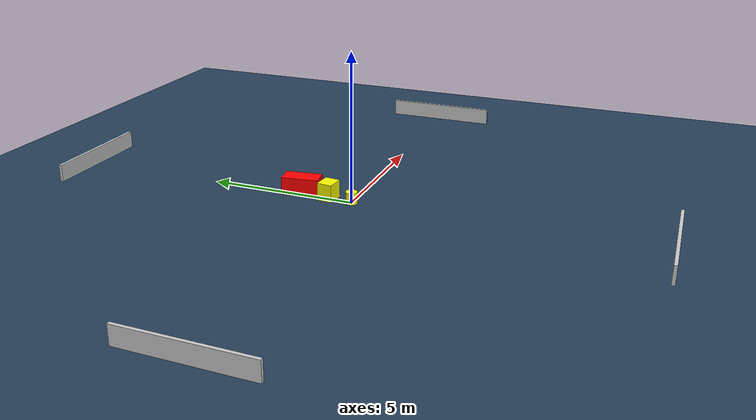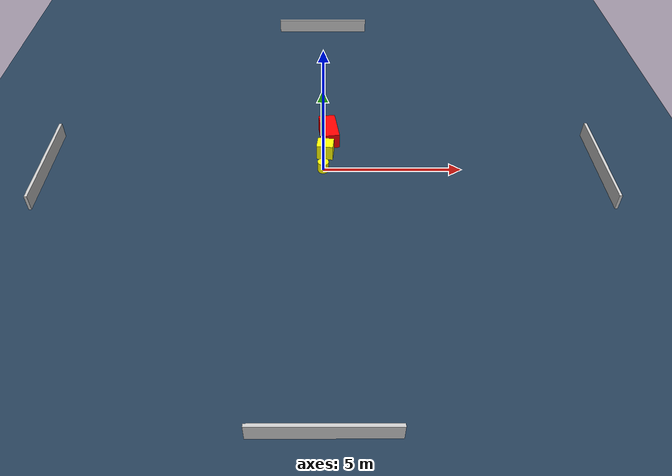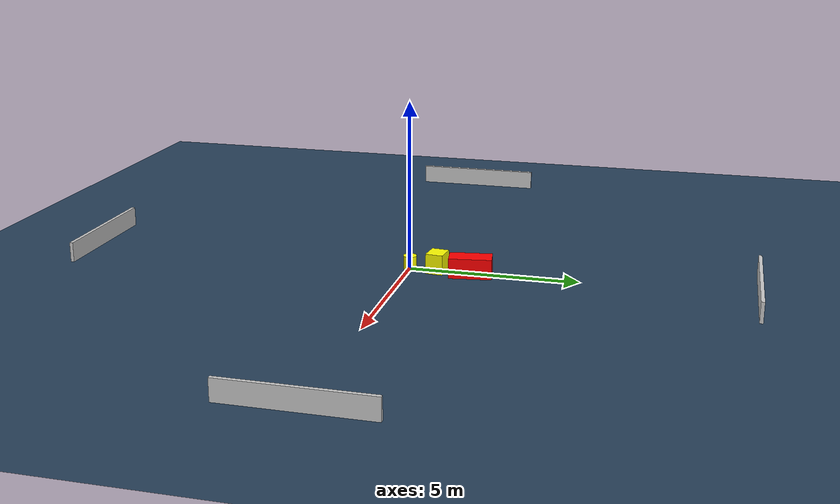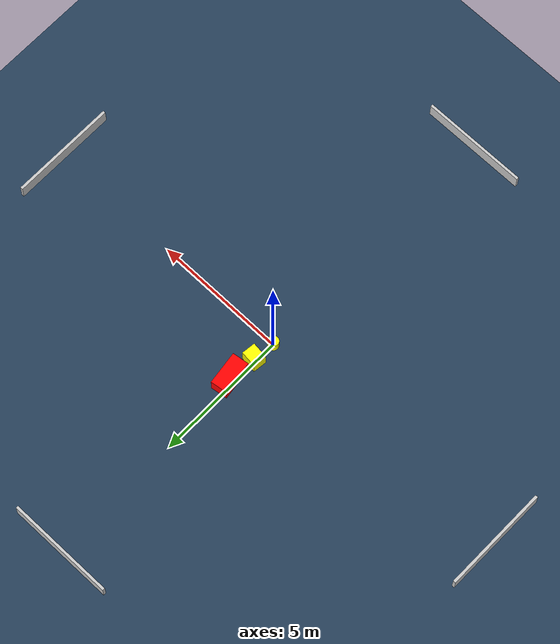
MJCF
<?xml version="1.0" ?>
<mujoco model="generated_environment">
  <option timestep="0.01" integrator="RK4" cone="elliptic"/>
  <default>
    <geom density="1"/>
  </default>
  <asset>
    <texture builtin="gradient" height="3072" name="skybox" rgb1="0.3 0.5 0.7" rgb2="0 0 0" type="skybox" width="512"/>
    <texture builtin="checker" height="300" name="groundplane" rgb1="0.2 0.3 0.4" rgb2="0.1 0.2 0.3" type="2d" width="300"/>
    <material name="groundplane" reflectance="0.2" texrepeat="5 5" texture="groundplane"/>
  </asset>
  <worldbody>
    <light dir="0 0 -1" directional="true" pos="0 0 1.5"/>
    <geom condim="3" friction="0.5 0.005 0.001" material="groundplane" name="floor" pos="0 0 0" size="0 0 0.05" type="plane"/>
    <body name="walls">
      <geom name="wall_1" condim="4" pos="-10.0 0.0 0.3" rgba="0.800000011920929 0.800000011920929 0.800000011920929 1.0" size="0.05 2.0 0.3" type="box"/>
      <geom name="wall_2" condim="4" pos="10.0 0.0 0.3" rgba="0.800000011920929 0.800000011920929 0.800000011920929 1.0" size="0.05 2.0 0.3" type="box"/>
      <geom name="wall_3" condim="4" pos="0.0 -10.0 0.3" rgba="0.800000011920929 0.800000011920929 0.800000011920929 1.0" size="2.0 0.05 0.3" type="box"/>
      <geom name="wall_4" condim="4" pos="0.0 10.0 0.3" rgba="0.800000011920929 0.800000011920929 0.800000011920929 1.0" size="2.0 0.05 0.3" type="box"/>
    </body>
    <body name="robot">
      <joint name="joint_x" type="slide" pos="0 0 0" axis="1 0 0"/>
      <joint name="joint_y" type="slide" pos="0 0 0" axis="0 1 0"/>
      <geom name="robot" type="cylinder" pos="0.0 0.0 0.2" size="0.2 0.2 0.0" mass="5.0" friction="1.0 0.005 0.0001" condim="4" rgba="1.0 1.0 0.0 1.0"/>
    </body>
    <body name="obstacle_1_movable">
      <geom name="obstacle_1_movable" condim="4" pos="0.07888390023442479 0.8473726500479105 0.3" euler="0 0 263.4880821058736" friction="0.0 0.005 0.001" rgba="1.0 1.0 0.0 1.0" size="0.2574765794763677 0.3003486977933321 0.3" type="box" mass="0.1"/>
      <joint type="free"/>
    </body>
    <body name="obstacle_2_static">
      <geom name="obstacle_2_static" condim="4" pos="0.21834783937710708 1.8700376448878018 0.3" euler="0 0 277.9251379032389" friction="0.0 0.005 0.001" rgba="1.0 0.0 0.0 1.0" size="0.6251515079047572 0.31340629430945033 0.3" type="box"/>
    </body>
  </worldbody>
  <actuator>
    <motor name="actuator_x" joint="joint_x" gear="1" ctrlrange="-1 1"/>
    <motor name="actuator_y" joint="joint_y" gear="1" ctrlrange="-1 1"/>
  </actuator>
</mujoco>
